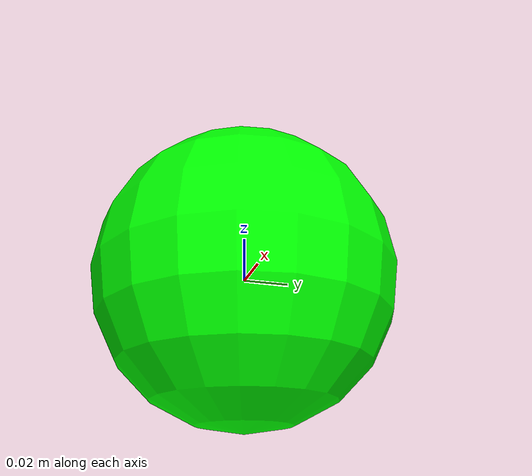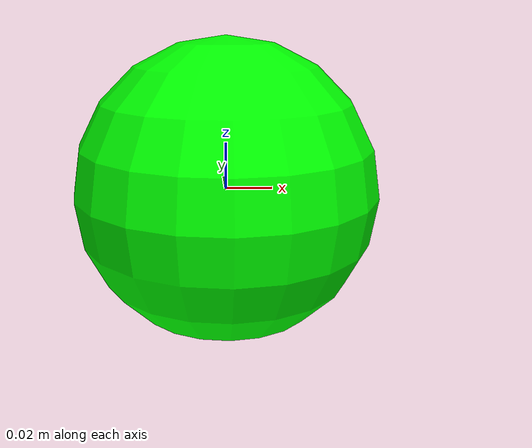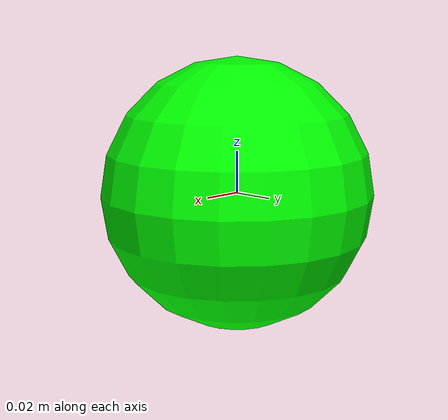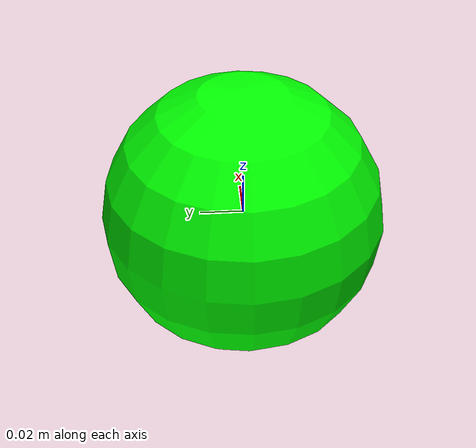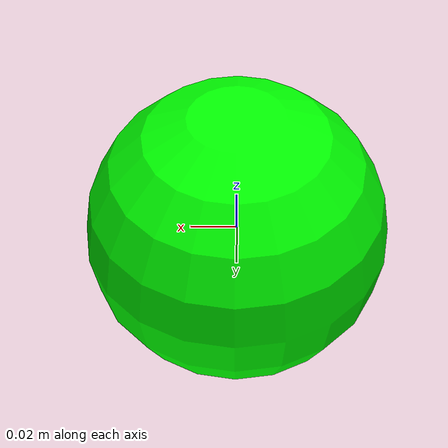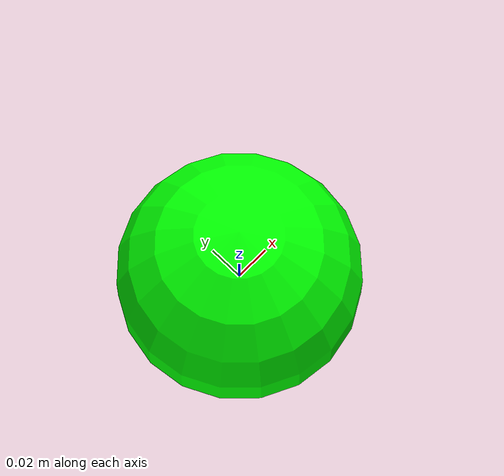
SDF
<?xml version='1.0'?>

<sdf version='1.7'>
  <model name="soccer_ball">
    <static>false</static>
    <link name="ball_link">
      <inertial>
        <mass>0.22</mass>
        <inertia>
          <ixx>3.72e-4</ixx>
          <ixy>0</ixy>
          <ixz>0</ixz>
          <iyy>3.72e-4</iyy>
          <iyz>0</iyz>
          <izz>3.72e-4</izz>
        </inertia>
      </inertial>
      <collision name="soccer_ball_collision">
        <geometry>
          <sphere>
            <radius>0.065</radius>
          </sphere>
        </geometry>
        <surface>
          <bounce>
            <restitution_coefficient>0.7</restitution_coefficient>
            <threshold>0.01</threshold>
          </bounce>
          <friction>
            <ode>
              <mu>0.1</mu>
              <mu2>0.04</mu2>
            </ode>
          </friction>
          <contact>
            <ode>
              <max_vel>10</max_vel>
              <min_depth>0.01</min_depth>
            </ode>
          </contact>
        </surface>
      </collision>

      <visual name='visual'>
        <pose>0 0 0 0 0 0</pose>
        <geometry>
          <sphere>
            <radius>0.065</radius>
          </sphere>
        </geometry>
        <material>
          <lighting>1</lighting>

          <script>
            <uri>file://media/materials/scripts/gazebo.material</uri>
            <name>Gazebo/CoM</name>
          </script>

          <shader type='pixel'>
            <normal_map>__default__</normal_map>
          </shader>
          <ambient>0 1 0 1</ambient>
          <diffuse>0 1 0 1</diffuse>
          <specular>0 0 0 1</specular>
          <emissive>0 0 0 1</emissive>
        </material>
        <transparency>0</transparency>
        <cast_shadows>1</cast_shadows>
      </visual>
    </link>
    <joint name="x_rotation_kinematic_joint" type="revolute">
      <child>soccer_ball_link</child>
      <parent>y_rotation_kinematic_link</parent>
      <axis>
        <xyz>1 0 0</xyz>
        <dynamics>
          <friction>0.001</friction>
          <damping>0.0001</damping>
        </dynamics>
      </axis>
    </joint>
    <link name="y_rotation_kinematic_link">
      <gravity>false</gravity>
      <inertial>
        <mass>1e-5</mass>
        <inertia>
          <ixx>1e-5</ixx>
          <ixy>0</ixy>
          <ixz>0</ixz>
          <iyy>1e-5</iyy>
          <iyz>0</iyz>
          <izz>1e-5</izz>
        </inertia>
      </inertial>
    </link>
    <joint name="y_rotation_kinematic_joint" type="revolute">
      <child>y_rotation_kinematic_link</child>
      <parent>z_rotation_kinematic_link</parent>
      <axis>
        <xyz>0 1 0</xyz>
        <dynamics>
          <friction>0.001</friction>
          <damping>0.0001</damping>
        </dynamics>
      </axis>
    </joint>
    <link name="z_rotation_kinematic_link">
      <gravity>false</gravity>
      <inertial>
        <mass>1e-5</mass>
        <inertia>
          <ixx>1e-5</ixx>
          <ixy>0</ixy>
          <ixz>0</ixz>
          <iyy>1e-5</iyy>
          <iyz>0</iyz>
          <izz>1e-5</izz>
        </inertia>
      </inertial>
    </link>
    <joint name="z_rotation_kinematic_joint" type="revolute">
      <child>z_rotation_kinematic_link</child>
      <parent>z_direction_kinematic_link</parent>
      <axis>
        <xyz>0 0 1</xyz>
        <dynamics>
          <friction>0.001</friction>
          <damping>0.0001</damping>
        </dynamics>
      </axis>
    </joint>
    <link name="z_direction_kinematic_link">
      <gravity>false</gravity>
      <inertial>
        <mass>1e-5</mass>
        <inertia>
          <ixx>1e-5</ixx>
          <ixy>0</ixy>
          <ixz>0</ixz>
          <iyy>1e-5</iyy>
          <iyz>0</iyz>
          <izz>1e-5</izz>
        </inertia>
      </inertial>
    </link>
    <joint name="z_direction_kinematic_joint" type="prismatic">
      <child>z_direction_kinematic_link</child>
      <parent>y_direction_kinematic_link</parent>
      <axis>
        <xyz>0 0 1</xyz>
        <dynamics>
          <friction>0.0001</friction>
          <damping>0.00001</damping>
        </dynamics>
      </axis>
    </joint>
    <link name="y_direction_kinematic_link">
      <gravity>false</gravity>
      <inertial>
        <mass>1e-5</mass>
      </inertial>
    </link>
    <joint name="y_direction_kinematic_joint" type="prismatic">
      <child>y_direction_kinematic_link</child>
      <parent>x_direction_kinematic_link</parent>
      <axis>
        <xyz>0 1 0</xyz>
        <dynamics>
          <friction>1000.0001</friction>
          <damping>10.00001</damping>
        </dynamics>
      </axis>
    </joint>
    <link name="x_direction_kinematic_link">
      <gravity>false</gravity>
      <inertial>
        <mass>1e-5</mass>
      </inertial>
    </link>
    <joint name="x_direction_kinematic_joint" type="prismatic">
      <child>x_direction_kinematic_link</child>
      <parent>world</parent>
      <axis>
        <xyz>1 0 0</xyz>
        <dynamics>
          <friction>0.0001</friction>
          <damping>0.00001</damping>
        </dynamics>
      </axis>
    </joint>
  </model>
</sdf>
